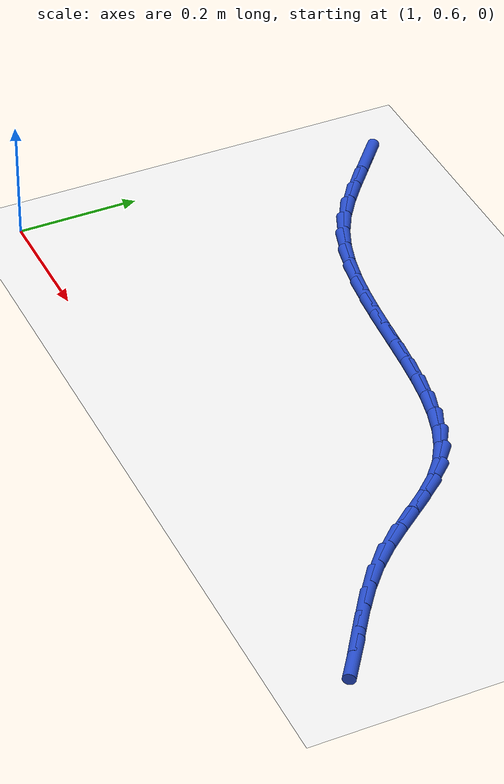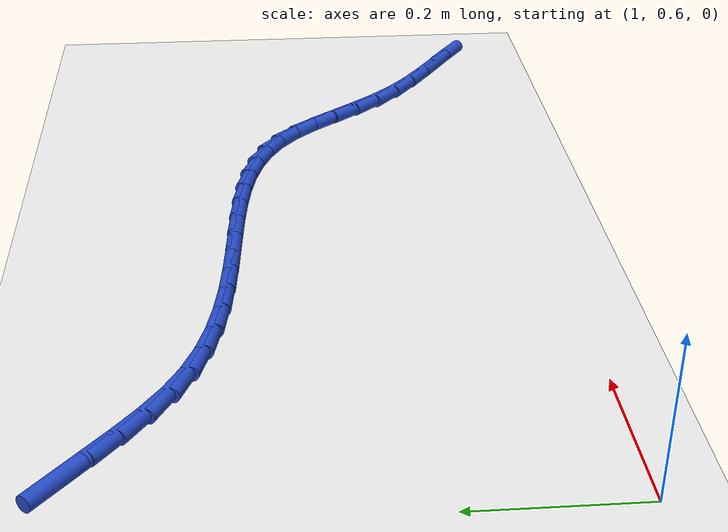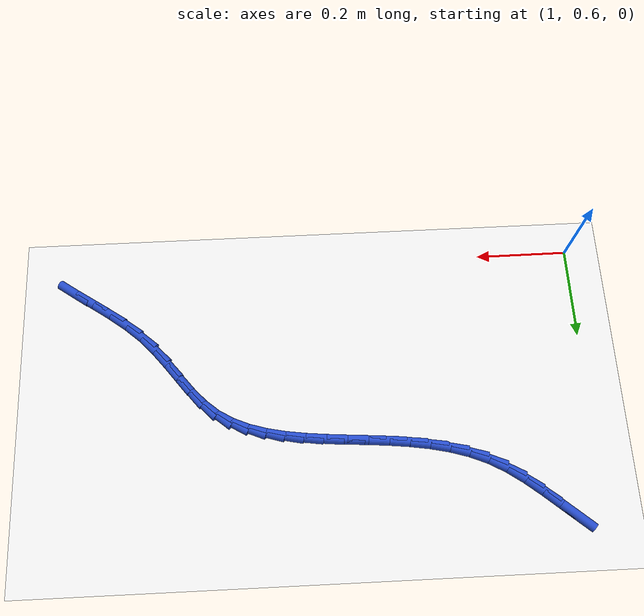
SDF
<sdf version="1.6">
 <world name="default">
  <model name="ground_plane">
   <static>1</static>
   <link name="link">
    <collision name="collision">
     <geometry><plane><normal>0 0 1</normal><size>100 100</size></plane></geometry>
     <surface><friction><ode><mu>100</mu><mu2>50</mu2></ode></friction></surface>
    </collision>
    <visual name="visual">
     <cast_shadows>0</cast_shadows>
     <geometry><plane><normal>0 0 1</normal><size>100 100</size></plane></geometry>
     <material>
      <script><uri>file://media/materials/scripts/gazebo.material</uri><name>Gazebo/WhiteGlow</name></script>
     </material>
    </visual>
   </link>
  </model>
  <model name="line">
   <link name="link_45">
    <pose>1.0611505144964404 1.1939755597403912 0.01 0 1.57 -0.7097712882787738</pose>
    <collision name="collision">
     <geometry><cylinder><radius>0.01</radius><length>0.08</length></cylinder></geometry>
    </collision>
    <visual name="visual">
     <material>
      <script><name>Gazebo/Blue</name><uri>file://media/materials/scripts/gazebo.material</uri></script>
     </material>
     <geometry><cylinder><radius>0.01</radius><length>0.08</length></cylinder></geometry>
    </visual>
   </link>
   <link name="link_46">
    <pose>1.0931900268686603 1.1664494194556212 0.01 0 1.57 -0.7100386018089009</pose>
    <collision name="collision">
     <geometry><cylinder><radius>0.01</radius><length>0.08</length></cylinder></geometry>
    </collision>
    <visual name="visual">
     <material>
      <script><name>Gazebo/Blue</name><uri>file://media/materials/scripts/gazebo.material</uri></script>
     </material>
     <geometry><cylinder><radius>0.01</radius><length>0.08</length></cylinder></geometry>
    </visual>
   </link>
   <link name="link_47">
    <pose>1.1254565471416085 1.1387132545399319 0.01 0 1.57 -0.6777701724831824</pose>
    <collision name="collision">
     <geometry><cylinder><radius>0.01</radius><length>0.08</length></cylinder></geometry>
    </collision>
    <visual name="visual">
     <material>
      <script><name>Gazebo/Blue</name><uri>file://media/materials/scripts/gazebo.material</uri></script>
     </material>
     <geometry><cylinder><radius>0.01</radius><length>0.08</length></cylinder></geometry>
    </visual>
   </link>
   <link name="link_48">
    <pose>1.1585256576934349 1.1120932812214492 0.01 0 1.57 -0.6119808842164338</pose>
    <collision name="collision">
     <geometry><cylinder><radius>0.01</radius><length>0.08</length></cylinder></geometry>
    </collision>
    <visual name="visual">
     <material>
      <script><name>Gazebo/Blue</name><uri>file://media/materials/scripts/gazebo.material</uri></script>
     </material>
     <geometry><cylinder><radius>0.01</radius><length>0.08</length></cylinder></geometry>
    </visual>
   </link>
   <link name="link_49">
    <pose>1.1929729409022902 1.0879157157282981 0.01 0 1.57 -0.5112355242063512</pose>
    <collision name="collision">
     <geometry><cylinder><radius>0.01</radius><length>0.08</length></cylinder></geometry>
    </collision>
    <visual name="visual">
     <material>
      <script><name>Gazebo/Blue</name><uri>file://media/materials/scripts/gazebo.material</uri></script>
     </material>
     <geometry><cylinder><radius>0.01</radius><length>0.08</length></cylinder></geometry>
    </visual>
   </link>
   <link name="link_50">
    <pose>1.2293696374610912 1.0674978264292825 0.01 0 1.57 -0.39395526314767665</pose>
    <collision name="collision">
     <geometry><cylinder><radius>0.01</radius><length>0.08</length></cylinder></geometry>
    </collision>
    <visual name="visual">
     <material>
      <script><name>Gazebo/Blue</name><uri>file://media/materials/scripts/gazebo.material</uri></script>
     </material>
     <geometry><cylinder><radius>0.01</radius><length>0.08</length></cylinder></geometry>
    </visual>
   </link>
   <link name="link_51">
    <pose>1.2679492455942383 1.0514608219988621 0.01 0 1.57 -0.2935019336537761</pose>
    <collision name="collision">
     <geometry><cylinder><radius>0.01</radius><length>0.08</length></cylinder></geometry>
    </collision>
    <visual name="visual">
     <material>
      <script><name>Gazebo/Blue</name><uri>file://media/materials/scripts/gazebo.material</uri></script>
     </material>
     <geometry><cylinder><radius>0.01</radius><length>0.08</length></cylinder></geometry>
    </visual>
   </link>
   <link name="link_52">
    <pose>1.3083717325773891 1.039243910581247 0.01 0 1.57 -0.2133826975024367</pose>
    <collision name="collision">
     <geometry><cylinder><radius>0.01</radius><length>0.08</length></cylinder></geometry>
    </collision>
    <visual name="visual">
     <material>
      <script><name>Gazebo/Blue</name><uri>file://media/materials/scripts/gazebo.material</uri></script>
     </material>
     <geometry><cylinder><radius>0.01</radius><length>0.08</length></cylinder></geometry>
    </visual>
   </link>
   <link name="link_53">
    <pose>1.3502413803766289 1.0301715374371643 0.01 0 1.57 -0.15265262641293062</pose>
    <collision name="collision">
     <geometry><cylinder><radius>0.01</radius><length>0.08</length></cylinder></geometry>
    </collision>
    <visual name="visual">
     <material>
      <script><name>Gazebo/Blue</name><uri>file://media/materials/scripts/gazebo.material</uri></script>
     </material>
     <geometry><cylinder><radius>0.01</radius><length>0.08</length></cylinder></geometry>
    </visual>
   </link>
   <link name="link_54">
    <pose>1.3931624709580412 1.0235681478273404 0.01 0 1.57 -0.10993387858803776</pose>
    <collision name="collision">
     <geometry><cylinder><radius>0.01</radius><length>0.08</length></cylinder></geometry>
    </collision>
    <visual name="visual">
     <material>
      <script><name>Gazebo/Blue</name><uri>file://media/materials/scripts/gazebo.material</uri></script>
     </material>
     <geometry><cylinder><radius>0.01</radius><length>0.08</length></cylinder></geometry>
    </visual>
   </link>
   <link name="link_55">
    <pose>1.4367392862877113 1.018758187012503 0.01 0 1.57 -0.08402510754415692</pose>
    <collision name="collision">
     <geometry><cylinder><radius>0.01</radius><length>0.08</length></cylinder></geometry>
    </collision>
    <visual name="visual">
     <material>
      <script><name>Gazebo/Blue</name><uri>file://media/materials/scripts/gazebo.material</uri></script>
     </material>
     <geometry><cylinder><radius>0.01</radius><length>0.08</length></cylinder></geometry>
    </visual>
   </link>
   <link name="link_56">
    <pose>1.4805761083317222 1.015066100253379 0.01 0 1.57 -0.074226875651785</pose>
    <collision name="collision">
     <geometry><cylinder><radius>0.01</radius><length>0.08</length></cylinder></geometry>
    </collision>
    <visual name="visual">
     <material>
      <script><name>Gazebo/Blue</name><uri>file://media/materials/scripts/gazebo.material</uri></script>
     </material>
     <geometry><cylinder><radius>0.01</radius><length>0.08</length></cylinder></geometry>
    </visual>
   </link>
   <link name="link_57">
    <pose>1.524277219056159 1.0118163328106953 0.01 0 1.57 -0.08050730419673535</pose>
    <collision name="collision">
     <geometry><cylinder><radius>0.01</radius><length>0.08</length></cylinder></geometry>
    </collision>
    <visual name="visual">
     <material>
      <script><name>Gazebo/Blue</name><uri>file://media/materials/scripts/gazebo.material</uri></script>
     </material>
     <geometry><cylinder><radius>0.01</radius><length>0.08</length></cylinder></geometry>
    </visual>
   </link>
   <link name="link_58">
    <pose>1.567446900427106 1.008333329945179 0.01 0 1.57 -0.1035939581052474</pose>
    <collision name="collision">
     <geometry><cylinder><radius>0.01</radius><length>0.08</length></cylinder></geometry>
    </collision>
    <visual name="visual">
     <material>
      <script><name>Gazebo/Blue</name><uri>file://media/materials/scripts/gazebo.material</uri></script>
     </material>
     <geometry><cylinder><radius>0.01</radius><length>0.08</length></cylinder></geometry>
    </visual>
   </link>
   <link name="link_59">
    <pose>1.6096894344106472 1.0039415369175577 0.01 0 1.57 -0.14502034740108105</pose>
    <collision name="collision">
     <geometry><cylinder><radius>0.01</radius><length>0.08</length></cylinder></geometry>
    </collision>
    <visual name="visual">
     <material>
      <script><name>Gazebo/Blue</name><uri>file://media/materials/scripts/gazebo.material</uri></script>
     </material>
     <geometry><cylinder><radius>0.01</radius><length>0.08</length></cylinder></geometry>
    </visual>
   </link>
   <link name="link_60">
    <pose>1.650609102972867 0.9979653989885575 0.01 0 1.57 -0.20708527109241273</pose>
    <collision name="collision">
     <geometry><cylinder><radius>0.01</radius><length>0.08</length></cylinder></geometry>
    </collision>
    <visual name="visual">
     <material>
      <script><name>Gazebo/Blue</name><uri>file://media/materials/scripts/gazebo.material</uri></script>
     </material>
     <geometry><cylinder><radius>0.01</radius><length>0.08</length></cylinder></geometry>
    </visual>
   </link>
   <link name="link_61">
    <pose>1.6898101880798495 0.9897293614189061 0.01 0 1.57 -0.2925809001503532</pose>
    <collision name="collision">
     <geometry><cylinder><radius>0.01</radius><length>0.08</length></cylinder></geometry>
    </collision>
    <visual name="visual">
     <material>
      <script><name>Gazebo/Blue</name><uri>file://media/materials/scripts/gazebo.material</uri></script>
     </material>
     <geometry><cylinder><radius>0.01</radius><length>0.08</length></cylinder></geometry>
    </visual>
   </link>
   <link name="link_62">
    <pose>1.7268969716976788 0.9785578694693304 0.01 0 1.57 -0.4040091113266492</pose>
    <collision name="collision">
     <geometry><cylinder><radius>0.01</radius><length>0.08</length></cylinder></geometry>
    </collision>
    <visual name="visual">
     <material>
      <script><name>Gazebo/Blue</name><uri>file://media/materials/scripts/gazebo.material</uri></script>
     </material>
     <geometry><cylinder><radius>0.01</radius><length>0.08</length></cylinder></geometry>
    </visual>
   </link>
   <link name="link_63">
    <pose>1.7614737357924395 0.9637753684005572 0.01 0 1.57 -0.5419607935183058</pose>
    <collision name="collision">
     <geometry><cylinder><radius>0.01</radius><length>0.08</length></cylinder></geometry>
    </collision>
    <visual name="visual">
     <material>
      <script><name>Gazebo/Blue</name><uri>file://media/materials/scripts/gazebo.material</uri></script>
     </material>
     <geometry><cylinder><radius>0.01</radius><length>0.08</length></cylinder></geometry>
    </visual>
   </link>
   <link name="link_64">
    <pose>1.7931447623302161 0.9447063034733141 0.01 0 1.57 -0.6995481345048974</pose>
    <collision name="collision">
     <geometry><cylinder><radius>0.01</radius><length>0.08</length></cylinder></geometry>
    </collision>
    <visual name="visual">
     <material>
      <script><name>Gazebo/Blue</name><uri>file://media/materials/scripts/gazebo.material</uri></script>
     </material>
     <geometry><cylinder><radius>0.01</radius><length>0.08</length></cylinder></geometry>
    </visual>
   </link>
   <link name="link_65">
    <pose>1.82159616130616 0.9207639893849637 0.01 0 1.57 -0.8282231691425831</pose>
    <collision name="collision">
     <geometry><cylinder><radius>0.01</radius><length>0.08</length></cylinder></geometry>
    </collision>
    <visual name="visual">
     <material>
      <script><name>Gazebo/Blue</name><uri>file://media/materials/scripts/gazebo.material</uri></script>
     </material>
     <geometry><cylinder><radius>0.01</radius><length>0.08</length></cylinder></geometry>
    </visual>
   </link>
   <link name="link_66">
    <pose>1.8475497330316701 0.8924865536382546 0.01 0 1.57 -0.8990624771617428</pose>
    <collision name="collision">
     <geometry><cylinder><radius>0.01</radius><length>0.08</length></cylinder></geometry>
    </collision>
    <visual name="visual">
     <material>
      <script><name>Gazebo/Blue</name><uri>file://media/materials/scripts/gazebo.material</uri></script>
     </material>
     <geometry><cylinder><radius>0.01</radius><length>0.08</length></cylinder></geometry>
    </visual>
   </link>
   <link name="link_67">
    <pose>1.872437876429372 0.86118387027528 0.01 0 1.57 -0.9173484359255261</pose>
    <collision name="collision">
     <geometry><cylinder><radius>0.01</radius><length>0.08</length></cylinder></geometry>
    </collision>
    <visual name="visual">
     <material>
      <script><name>Gazebo/Blue</name><uri>file://media/materials/scripts/gazebo.material</uri></script>
     </material>
     <geometry><cylinder><radius>0.01</radius><length>0.08</length></cylinder></geometry>
    </visual>
   </link>
   <link name="link_68">
    <pose>1.897706893700599 0.8281809130119261 0.01 0 1.57 -0.8889065485625</pose>
    <collision name="collision">
     <geometry><cylinder><radius>0.01</radius><length>0.08</length></cylinder></geometry>
    </collision>
    <visual name="visual">
     <material>
      <script><name>Gazebo/Blue</name><uri>file://media/materials/scripts/gazebo.material</uri></script>
     </material>
     <geometry><cylinder><radius>0.01</radius><length>0.08</length></cylinder></geometry>
    </visual>
   </link>
   <link name="link_69">
    <pose>1.9248030870466841 0.7948026555640797 0.01 0 1.57 -0.8181725617067681</pose>
    <collision name="collision">
     <geometry><cylinder><radius>0.01</radius><length>0.08</length></cylinder></geometry>
    </collision>
    <visual name="visual">
     <material>
      <script><name>Gazebo/Blue</name><uri>file://media/materials/scripts/gazebo.material</uri></script>
     </material>
     <geometry><cylinder><radius>0.01</radius><length>0.08</length></cylinder></geometry>
    </visual>
   </link>
   <link name="link_70">
    <pose>1.9551727586689593 0.7623740716476279 0.01 0 1.57 -0.7189248837944462</pose>
    <collision name="collision">
     <geometry><cylinder><radius>0.01</radius><length>0.08</length></cylinder></geometry>
    </collision>
    <visual name="visual">
     <material>
      <script><name>Gazebo/Blue</name><uri>file://media/materials/scripts/gazebo.material</uri></script>
     </material>
     <geometry><cylinder><radius>0.01</radius><length>0.08</length></cylinder></geometry>
    </visual>
   </link>
   <link name="link_71">
    <pose>1.9898760083517668 0.7320029138616024 0.01 0 1.57 -0.643028336924543</pose>
    <collision name="collision">
     <geometry><cylinder><radius>0.01</radius><length>0.08</length></cylinder></geometry>
    </collision>
    <visual name="visual">
     <material>
      <script><name>Gazebo/Blue</name><uri>file://media/materials/scripts/gazebo.material</uri></script>
     </material>
     <geometry><cylinder><radius>0.01</radius><length>0.08</length></cylinder></geometry>
    </visual>
   </link>
   <link name="link_72">
    <pose>2.0278100377541124 0.7035804039762343 0.01 0 1.57 -0.6019525893170691</pose>
    <collision name="collision">
     <geometry><cylinder><radius>0.01</radius><length>0.08</length></cylinder></geometry>
    </collision>
    <visual name="visual">
     <material>
      <script><name>Gazebo/Blue</name><uri>file://media/materials/scripts/gazebo.material</uri></script>
     </material>
     <geometry><cylinder><radius>0.01</radius><length>0.08</length></cylinder></geometry>
    </visual>
   </link>
   <link name="link_73">
    <pose>2.067119526640527 0.6765745047680679 0.01 0 1.57 -0.5921958181747681</pose>
    <collision name="collision">
     <geometry><cylinder><radius>0.01</radius><length>0.08</length></cylinder></geometry>
    </collision>
    <visual name="visual">
     <material>
      <script><name>Gazebo/Blue</name><uri>file://media/materials/scripts/gazebo.material</uri></script>
     </material>
     <geometry><cylinder><radius>0.01</radius><length>0.08</length></cylinder></geometry>
    </visual>
   </link>
   <link name="link_74">
    <pose>2.105948394145763 0.6504527511943397 0.01 0 1.57 -0.6148622376958081</pose>
    <collision name="collision">
     <geometry><cylinder><radius>0.01</radius><length>0.08</length></cylinder></geometry>
    </collision>
    <visual name="visual">
     <material>
      <script><name>Gazebo/Blue</name><uri>file://media/materials/scripts/gazebo.material</uri></script>
     </material>
     <geometry><cylinder><radius>0.01</radius><length>0.08</length></cylinder></geometry>
    </visual>
   </link>
  </model>
 </world>
</sdf>
